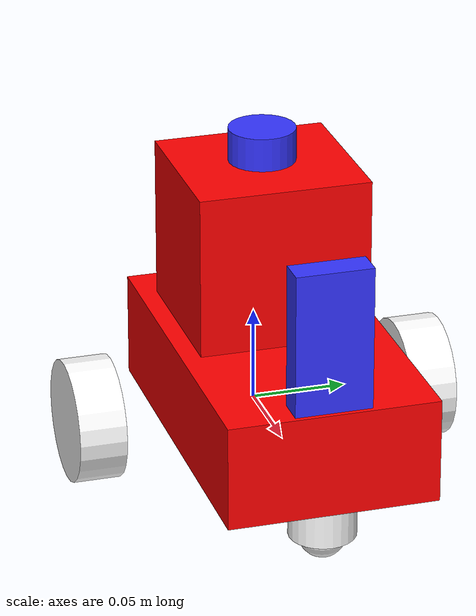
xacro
<?xml version="1.0"?>
<robot xmlns:xacro="http://www.ros.org/wiki/xacro" name="diff_robot">

    <xacro:include filename="inertial_macros.xacro"/>

    <material name="white">
        <color rgba="1 1 1 1"/>
    </material>

    <material name="orange">
        <color rgba="1 0.3 0.1 1"/>
    </material>

    <material name="blue">
        <color rgba="0.2 0.2 1 1"/>
    </material>

    <material name="black">
        <color rgba="0 0 0 1"/>
    </material>

    <material name="red">
        <color rgba="1 0 0 1"/>
    </material>

    <!-- BASE LINK -->
    <link name="base_link"></link>

    <!-- BASE JOINT -->
    <joint name="chassis_joint" type="fixed">
    <origin xyz="-0.05 0.0 0.0"/>
    <parent link="base_link"/>
    <child link="chassis_link"/>
    </joint>

    <!-- CHASSIS LINK -->
    <link name="chassis_link">
    <visual>
        <origin xyz="0.095 0.0 0.0275" rpy="0.0 0.0 0.0"/>
        <geometry>
            <box size="0.19 0.11 0.055"/>
        </geometry>
        <material name="red"/>
    </visual>

    <collision>
        <origin xyz="0.095 0.0 0.0275" rpy="0.0 0.0 0.0"/>
        <geometry>
            <box size="0.19 0.11 0.055"/>
        </geometry>
    </collision>
    <xacro:inertial_box mass="0.08" x="0.19" y="0.11" z="0.055">
        <origin xyz="0.095 0.0 0.0275" rpy="0.0 0.0 0.0"/>
    </xacro:inertial_box>
    </link>

    <gazebo reference="chassis_link">
        <material>Gazebo/Red</material>
    </gazebo>

    <!-- RIGHT WHEEL JOINT -->
    <joint name="right_wheel_joint" type="continuous">
        <origin xyz="0.0 -0.09 0.0" rpy="-1.57 0.0 0.0"/>
        <parent link="base_link"/>
        <child link="right_wheel_link"/>
        <axis xyz="0.0 0.0 1.0"/>
    </joint>

    <!-- RIGHT WHEEL LINK -->
    <link name="right_wheel_link">
        <visual>
            <geometry>
                <cylinder radius="0.0325" length="0.025"/>
            </geometry>
            <material name="white"/>
        </visual>

        <collision>
            <geometry>
                <sphere radius="0.0325"/>
            </geometry>
        </collision>
        <xacro:inertial_cylinder mass="0.01" length="0.025" radius="0.0325">
            <origin xyz="0 0 0" rpy="0 0 0"/>
        </xacro:inertial_cylinder>
    </link>

    <gazebo reference="right_wheel_link">
        <material>Gazebo/White</material>
    </gazebo>

    <!-- LEFT WHEEL JOINT -->
    <joint name="left_wheel_joint" type="continuous">
        <origin xyz="0.0 0.09 0.0" rpy="1.57 0.0 0.0"/>
        <parent link="base_link"/>
        <child link="left_wheel_link"/>
        <axis xyz="0.0 0.0 -1.0"/>
    </joint>

    <!-- LEFT WHEEL LINK -->
    <link name="left_wheel_link">
        <visual>
            <geometry>
                <cylinder radius="0.0325" length="0.025"/>
            </geometry>
            <material name="white"/>
        </visual>

        <collision>
            <geometry>
                <sphere radius="0.0325"/>
            </geometry>
        </collision>
        <xacro:inertial_cylinder mass="0.01" length="0.025" radius="0.0325">
            <origin xyz="0 0 0" rpy="0 0 0"/>
        </xacro:inertial_cylinder>
    </link>

    <gazebo reference="left_wheel_link">
        <material>Gazebo/White</material>
    </gazebo>

    <!-- CAMERA JOINT -->
    <joint name="camera_joint" type="fixed">
        <origin xyz="0.18 0.0 0.09" rpy="0.0 0.0 0.0"/>
        <parent link="chassis_link"/>
        <child link="camera_link"/>
    </joint>

    <!-- CAMERA LINK -->
    <link name="camera_link">
        <visual>
            <origin xyz="0.0 0.0 0.0" rpy="0.0 0.0 0.0"/>
            <geometry>
                <box size="0.015 0.04 0.08"/>
            </geometry>
            <material name="blue"/>
        </visual>

        <collision>
            <geometry>
                <box size="0.015 0.04 0.08"/>
            </geometry>
        </collision>
    </link>

    <joint name="camera_optical_joint" type="fixed">
        <parent link="camera_link"/>
        <child link="camera_link_optical"/>
        <origin xyz="0 0 0" rpy="${-pi/2} 0 ${-pi/2}"/>
    </joint>

    <link name="camera_link_optical"></link>

    <!-- LIDAR CASE JOINT -->
    <joint name="lidar_case_joint" type="fixed">
        <origin xyz="0.065 0.0 0.09" rpy="0.0 0.0 0.0"/>
        <parent link="chassis_link"/>
        <child link="lidar_case_link"/>
    </joint>

    <!-- LIDAR CASE LINK -->
    <link name="lidar_case_link">
    <visual>
        <origin xyz="0.0 0.0 0.0" rpy="0.0 0.0 0.0"/>
        <geometry>
            <box size="0.085 0.09 0.1"/>
        </geometry>
        <material name="red"/>
    </visual>

    <collision>
        <geometry>
            <box size="0.085 0.09 0.1"/>
        </geometry>
    </collision>
    <xacro:inertial_box mass="0.05" x="0.085" y="0.09" z="0.1">
        <origin xyz="0.0 0.0 0.0" rpy="0 0 0"/>
    </xacro:inertial_box>
    </link>

    <gazebo reference="lidar_case_link">
        <material>Gazebo/Red</material>
    </gazebo>

    <!-- LIDAR  JOINT -->
    <joint name="lidar_joint" type="fixed">
        <origin xyz="0.0 0.0 0.06" rpy="0.0 0.0 4.71239"/>
        <parent link="lidar_case_link"/>
        <child link="lidar_link"/>
    </joint>

    <!-- LIDAR LINK -->
    <link name="lidar_link">
    <visual>
        <origin xyz="0.0 0.0 0.0" rpy="0.0 0.0 0.0"/>
        <geometry>
            <cylinder radius="0.0175" length="0.0175"/>
        </geometry>
        <material name="blue"/>
    </visual>
    <collision>
        <geometry>
            <cylinder radius="0.0175" length="0.0175"/>
        </geometry>
    </collision>
    <xacro:inertial_cylinder mass="0.08" length="0.0175" radius="0.0175">
        <origin xyz="0 0 0" rpy="0 0 0"/>
    </xacro:inertial_cylinder>
    </link>

    <gazebo reference="lidar_link">
        <material>Gazebo/Blue</material>
    </gazebo>

    <!-- CASTER HOLDER JOINT -->
    <joint name="caster_holder_joint" type="fixed">
        <origin xyz="0.17 0.0 0.0" rpy="0.0 0.0 0.0"/>
        <parent link="chassis_link"/>
        <child link="caster_holder_link"/>
    </joint>

    <!-- CASTER HOLDER LINK -->
    <link name="caster_holder_link">
    <visual>
        <origin xyz="0.0 0.0 0.0" rpy="0.0 0.0 0.0"/>
        <geometry>
            <cylinder radius="0.0175" length="0.040"/>
        </geometry>
        <material name="white"/>
    </visual>

    <collision>
        <geometry>
            <cylinder radius="0.0175" length="0.040"/>
        </geometry>
    </collision>
    <xacro:inertial_cylinder mass="0.05" length="0.0175" radius="0.040">
        <origin xyz="0 0 0" rpy="0 0 0"/>
    </xacro:inertial_cylinder>
    </link>

    <gazebo reference="caster_holder_link">
        <material>Gazebo/white</material>
    </gazebo>

    <!-- CASTER BALL JOINT -->
    <joint name="caster_ball_joint" type="fixed">
        <origin xyz="0.0 0.0 -0.020" rpy="0.0 0.0 0.0"/>
        <parent link="caster_holder_link"/>
        <child link="caster_link"/>
    </joint>

    <!-- CASTER BALL LINK -->
    <link name="caster_link">
    <visual>
        <origin xyz="0.0 0.0 0.0" rpy="0.0 0.0 0.0"/>
        <geometry>
            <sphere radius="0.0125"/>
        </geometry>
        <material name="white"/>
    </visual>

    <collision>
        <geometry>
            <sphere radius="0.0125"/>
        </geometry>
    </collision>
    <xacro:inertial_sphere mass="0.01" radius="0.0125">
        <origin xyz="0 0 0" rpy="0 0 0"/>
    </xacro:inertial_sphere>
    </link>

    <gazebo reference="caster_link">
        <material>Gazebo/white</material>
        <mu1 value="0.001"/>
        <mu2 value="0.001"/>
    </gazebo>

    <!-- GAZEBO Lidar Plugin -->
    <gazebo reference="lidar_link">
        <material>Gazebo/Blue</material>
        <sensor name="laser" type="ray">
            <pose> 0 0 0 0 0 0 </pose>
            <visualize>false</visualize>
            <update_rate>10</update_rate>
            <ray>
            <scan>
                <horizontal>
                <samples>360</samples>
                <min_angle>0.00</min_angle>
                <max_angle>6.28319</max_angle>
                <!-- 3.14 is 180 degree -->
                </horizontal>
            </scan>
            <range>
                <min>0.3</min>
                <max>12</max>
            </range>
            </ray>
            <plugin name="laser_controller" filename="libgazebo_ros_ray_sensor.so">
            <ros>
                <remapping>~/out:=scan_sim</remapping>
            </ros>
            <output_type>sensor_msgs/LaserScan</output_type>
            <frame_name>lidar_link</frame_name>
            </plugin>
        </sensor>
        </gazebo>

    <!-- CAMERA  Plugin -->
    <gazebo reference="camera_link">
        <material>Gazebo/Black</material>
        <sensor type="camera" name="camera">
        <pose>0 0 0 0 0 0</pose>
        <visualize>true</visualize>
        <update_rate>10.0</update_rate>
        <camera name="head">
        <horizontal_fov>1.3962634</horizontal_fov>
        <image>
            <width>800</width>
            <height>800</height>
            <format>R8G8B8</format>
        </image>
        <clip>
            <near>0.02</near>
            <far>300</far>
        </clip>
        </camera>
        <plugin name="camera_controller" filename="libgazebo_ros_camera.so">
            <alwaysOn>true</alwaysOn>
            <updateRate>0.0</updateRate>
            <cameraName>rrbot/camera1</cameraName>
            <imageTopicName>image_raw</imageTopicName>
            <cameraInfoTopicName>camera_info</cameraInfoTopicName>
            <frameName>camera_link</frameName>
            <hackBaseline>0.07</hackBaseline>
            <distortionK1>0.0</distortionK1>
            <distortionK2>0.0</distortionK2>
            <distortionK3>0.0</distortionK3>
            <distortionT1>0.0</distortionT1>
            <distortionT2>0.0</distortionT2>
        </plugin>
        </sensor>
    </gazebo>

</robot>

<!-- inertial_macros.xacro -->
<robot xmlns:xacro="http://www.ros.org/wiki/xacro"  name="robot">

    <!-- Specify some standard inertial calculations https://en.wikipedia.org/wiki/List_of_moments_of_inertia -->
    <!-- These make use of xacro's mathematical functionality -->

    <xacro:macro name="inertial_sphere" params="mass radius *origin">
        <inertial>
            <xacro:insert_block name="origin"/>
            <mass value="${mass}" />
            <inertia ixx="${(2/5) * mass * (radius*radius)}" ixy="0.0" ixz="0.0"
                    iyy="${(2/5) * mass * (radius*radius)}" iyz="0.0"
                    izz="${(2/5) * mass * (radius*radius)}" />
        </inertial>
    </xacro:macro>

    <xacro:macro name="inertial_box" params="mass x y z *origin">
        <inertial>
            <xacro:insert_block name="origin"/>
            <mass value="${mass}" />
            <inertia ixx="${(1/12) * mass * (y*y+z*z)}" ixy="0.0" ixz="0.0"
                    iyy="${(1/12) * mass * (x*x+z*z)}" iyz="0.0"
                    izz="${(1/12) * mass * (x*x+y*y)}" />
        </inertial>
    </xacro:macro>

    <xacro:macro name="inertial_cylinder" params="mass length radius *origin">
        <inertial>
            <xacro:insert_block name="origin"/>
            <mass value="${mass}" />
            <inertia ixx="${(1/12) * mass * (3*radius*radius + length*length)}" ixy="0.0" ixz="0.0"
                    iyy="${(1/12) * mass * (3*radius*radius + length*length)}" iyz="0.0"
                    izz="${(1/2) * mass * (radius*radius)}" />
        </inertial>
    </xacro:macro>

</robot>
